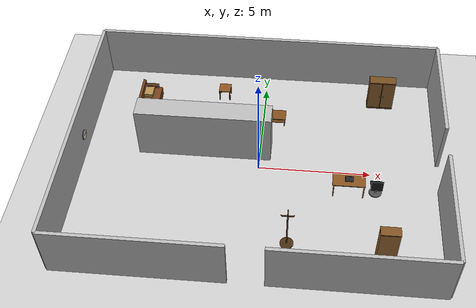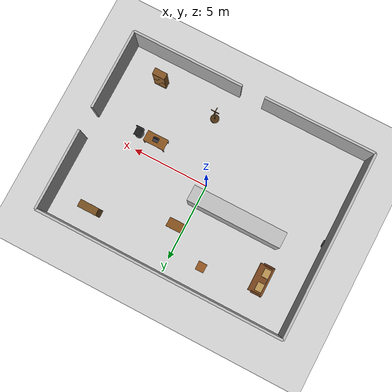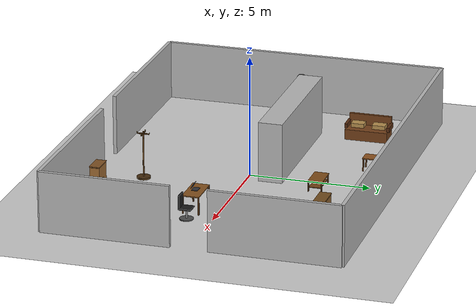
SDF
<?xml version="1.0"?>
<sdf version="1.7">
  <world name="uvc5_room">

    <!-- ========== GAZEBO ROS PLUGINS ========== -->
    <plugin name="gazebo_ros_state" filename="libgazebo_ros_state.so">
      <ros>
        <namespace>/gazebo</namespace>
      </ros>
      <update_rate>10.0</update_rate>
    </plugin>

    <!-- ========== LIGHTING ========== -->
    <light name="sun" type="directional">
      <cast_shadows>0</cast_shadows>
      <pose>0 0 10 0 0 0</pose>
      <diffuse>0.6 0.6 0.6 1</diffuse>
      <specular>0.1 0.1 0.1 1</specular>
      <attenuation>
        <range>1000</range>
        <constant>0.9</constant>
        <linear>0.01</linear>
        <quadratic>0.001</quadratic>
      </attenuation>
      <direction>0 0 -1</direction>
      <spot><inner_angle>0</inner_angle><outer_angle>0</outer_angle><falloff>0</falloff></spot>
    </light>

    <!-- ========== PHYSICS ========== -->
    <gravity>0 0 -9.8</gravity>
    <magnetic_field>6e-06 2.3e-05 -4.2e-05</magnetic_field>
    <atmosphere type="adiabatic"/>
    <physics type="ode">
      <max_step_size>0.001</max_step_size>
      <real_time_factor>1</real_time_factor>
      <real_time_update_rate>1000</real_time_update_rate>
    </physics>

    <!-- ========== SCENE ========== -->
    <scene>
      <ambient>0.4 0.4 0.4 1</ambient>
      <background>0.5 0.5 0.5 1</background>
      <shadows>0</shadows>
    </scene>

    <audio><device>default</device></audio>
    <wind/>
    <spherical_coordinates>
      <surface_model>EARTH_WGS84</surface_model>
      <latitude_deg>0</latitude_deg>
      <longitude_deg>0</longitude_deg>
      <elevation>0</elevation>
      <heading_deg>0</heading_deg>
    </spherical_coordinates>

    <!-- ========== GROUND PLANE ========== -->
    <model name="ground_plane">
      <static>1</static>
      <link name="link">
        <collision name="collision">
          <geometry><plane><normal>0 0 1</normal><size>100 100</size></plane></geometry>
          <surface>
            <friction><ode><mu>100</mu><mu2>50</mu2></ode><torsional><ode/></torsional></friction>
            <contact><ode/></contact>
            <bounce/>
          </surface>
          <max_contacts>10</max_contacts>
        </collision>
        <visual name="visual">
          <cast_shadows>0</cast_shadows>
          <geometry><plane><normal>0 0 1</normal><size>100 100</size></plane></geometry>
          <material><script><uri>file://media/materials/scripts/gazebo.material</uri><n>Gazebo/Grey</n></script></material>
        </visual>
        <self_collide>0</self_collide><enable_wind>0</enable_wind><kinematic>0</kinematic>
      </link>
    </model>

    <!-- ========== ROOM WALLS ========== -->
    <!-- Room: 16m wide (x: -8 to 8), 12m deep (y: -6 to 6), height 2.5m -->
    <!-- Entry: south-center (x: -0.75 to 0.75), y: -6                    -->
    <!-- Exit:  east wall opening at y: -0.75 to 0.75                      -->
    <model name="uvc5_room_walls">
      <static>1</static>
      <pose>0 0 0 0 0 0</pose>

      <!-- South wall left: x -8 to -0.75 => length 7.25, center x=-4.375 -->
      <link name="Wall_south_left">
        <collision name="col"><geometry><box><size>7.25 0.15 2.5</size></box></geometry><pose>0 0 1.25 0 0 0</pose><max_contacts>10</max_contacts><surface><contact><ode/></contact><bounce/><friction><torsional><ode/></torsional><ode/></friction></surface></collision>
        <visual name="vis"><pose>0 0 1.25 0 0 0</pose><geometry><box><size>7.25 0.15 2.5</size></box></geometry><material><script><uri>file://media/materials/scripts/gazebo.material</uri><n>Gazebo/Grey</n></script></material></visual>
        <pose>-4.375 -6.0 0 0 0 0</pose>
        <self_collide>0</self_collide><enable_wind>0</enable_wind><kinematic>0</kinematic>
      </link>

      <!-- South wall right: x 0.75 to 8 => length 7.25, center x=4.375 -->
      <link name="Wall_south_right">
        <collision name="col"><geometry><box><size>7.25 0.15 2.5</size></box></geometry><pose>0 0 1.25 0 0 0</pose><max_contacts>10</max_contacts><surface><contact><ode/></contact><bounce/><friction><torsional><ode/></torsional><ode/></friction></surface></collision>
        <visual name="vis"><pose>0 0 1.25 0 0 0</pose><geometry><box><size>7.25 0.15 2.5</size></box></geometry><material><script><uri>file://media/materials/scripts/gazebo.material</uri><n>Gazebo/Grey</n></script></material></visual>
        <pose>4.375 -6.0 0 0 0 0</pose>
        <self_collide>0</self_collide><enable_wind>0</enable_wind><kinematic>0</kinematic>
      </link>

      <!-- North wall: full 16m -->
      <link name="Wall_north">
        <collision name="col"><geometry><box><size>16.0 0.15 2.5</size></box></geometry><pose>0 0 1.25 0 0 0</pose><max_contacts>10</max_contacts><surface><contact><ode/></contact><bounce/><friction><torsional><ode/></torsional><ode/></friction></surface></collision>
        <visual name="vis"><pose>0 0 1.25 0 0 0</pose><geometry><box><size>16.0 0.15 2.5</size></box></geometry><material><script><uri>file://media/materials/scripts/gazebo.material</uri><n>Gazebo/Grey</n></script></material></visual>
        <pose>0 6.0 0 0 0 0</pose>
        <self_collide>0</self_collide><enable_wind>0</enable_wind><kinematic>0</kinematic>
      </link>

      <!-- West wall: full 12m -->
      <link name="Wall_west">
        <collision name="col"><geometry><box><size>0.15 12.0 2.5</size></box></geometry><pose>0 0 1.25 0 0 0</pose><max_contacts>10</max_contacts><surface><contact><ode/></contact><bounce/><friction><torsional><ode/></torsional><ode/></friction></surface></collision>
        <visual name="vis"><pose>0 0 1.25 0 0 0</pose><geometry><box><size>0.15 12.0 2.5</size></box></geometry><material><script><uri>file://media/materials/scripts/gazebo.material</uri><n>Gazebo/Grey</n></script></material></visual>
        <pose>-8.0 0 0 0 0 0</pose>
        <self_collide>0</self_collide><enable_wind>0</enable_wind><kinematic>0</kinematic>
      </link>

      <!-- East wall south segment: y -6 to -0.75 => length 5.25, center y=-3.375 -->
      <link name="Wall_east_south">
        <collision name="col"><geometry><box><size>0.15 5.25 2.5</size></box></geometry><pose>0 0 1.25 0 0 0</pose><max_contacts>10</max_contacts><surface><contact><ode/></contact><bounce/><friction><torsional><ode/></torsional><ode/></friction></surface></collision>
        <visual name="vis"><pose>0 0 1.25 0 0 0</pose><geometry><box><size>0.15 5.25 2.5</size></box></geometry><material><script><uri>file://media/materials/scripts/gazebo.material</uri><n>Gazebo/Grey</n></script></material></visual>
        <pose>8.0 -3.375 0 0 0 0</pose>
        <self_collide>0</self_collide><enable_wind>0</enable_wind><kinematic>0</kinematic>
      </link>

      <!-- East wall north segment: y 0.75 to 6 => length 5.25, center y=3.375 -->
      <link name="Wall_east_north">
        <collision name="col"><geometry><box><size>0.15 5.25 2.5</size></box></geometry><pose>0 0 1.25 0 0 0</pose><max_contacts>10</max_contacts><surface><contact><ode/></contact><bounce/><friction><torsional><ode/></torsional><ode/></friction></surface></collision>
        <visual name="vis"><pose>0 0 1.25 0 0 0</pose><geometry><box><size>0.15 5.25 2.5</size></box></geometry><material><script><uri>file://media/materials/scripts/gazebo.material</uri><n>Gazebo/Grey</n></script></material></visual>
        <pose>8.0 3.375 0 0 0 0</pose>
        <self_collide>0</self_collide><enable_wind>0</enable_wind><kinematic>0</kinematic>
      </link>

    </model>

    <!-- ========== CORRIDOR (left-center, wall-height, dark grey) ========== -->
    <!-- center: (-2.5, 1.0), size: 6.0 x 1.0 x 2.5                         -->
    <model name="corridor">
      <static>1</static>
      <pose>-2.5 1.0 0 0 0 0</pose>
      <link name="link">
        <collision name="col"><geometry><box><size>6.0 1.0 2.5</size></box></geometry><pose>0 0 1.25 0 0 0</pose><max_contacts>10</max_contacts><surface><contact><ode/></contact><bounce/><friction><torsional><ode/></torsional><ode/></friction></surface></collision>
        <visual name="vis"><pose>0 0 1.25 0 0 0</pose><geometry><box><size>6.0 1.0 2.5</size></box></geometry><material><script><uri>file://media/materials/scripts/gazebo.material</uri><n>Gazebo/DarkGrey</n></script></material></visual>
        <self_collide>0</self_collide><enable_wind>0</enable_wind><kinematic>0</kinematic>
      </link>
    </model>

    <!-- ========== SOFA WITH CUSHIONS (top-left, x=-5.5 y=3.5, rotated 90deg left) ========== -->
    <model name="sofa">
      <static>1</static>
      <pose>-5.5 3.5 0 0 0 1.5708</pose>
      <link name="link">
        <!-- Seat base -->
        <visual name="seat_vis"><pose>0 0 0.22 0 0 0</pose><geometry><box><size>1.80 0.85 0.44</size></box></geometry><material><ambient>0.45 0.25 0.10 1</ambient><diffuse>0.45 0.25 0.10 1</diffuse><specular>0.08 0.05 0.02 1</specular></material></visual>
        <collision name="seat_col"><pose>0 0 0.22 0 0 0</pose><geometry><box><size>1.80 0.85 0.44</size></box></geometry><max_contacts>10</max_contacts></collision>
        <!-- Backrest -->
        <visual name="back_vis"><pose>0 0.40 0.65 0 0 0</pose><geometry><box><size>1.80 0.12 0.50</size></box></geometry><material><ambient>0.45 0.25 0.10 1</ambient><diffuse>0.45 0.25 0.10 1</diffuse><specular>0.08 0.05 0.02 1</specular></material></visual>
        <collision name="back_col"><pose>0 0.40 0.65 0 0 0</pose><geometry><box><size>1.80 0.12 0.50</size></box></geometry><max_contacts>10</max_contacts></collision>
        <!-- Left armrest -->
        <visual name="arm_l_vis"><pose>-0.90 0.10 0.52 0 0 0</pose><geometry><box><size>0.12 0.70 0.20</size></box></geometry><material><ambient>0.35 0.18 0.07 1</ambient><diffuse>0.35 0.18 0.07 1</diffuse></material></visual>
        <collision name="arm_l_col"><pose>-0.90 0.10 0.52 0 0 0</pose><geometry><box><size>0.12 0.70 0.20</size></box></geometry><max_contacts>10</max_contacts></collision>
        <!-- Right armrest -->
        <visual name="arm_r_vis"><pose>0.90 0.10 0.52 0 0 0</pose><geometry><box><size>0.12 0.70 0.20</size></box></geometry><material><ambient>0.35 0.18 0.07 1</ambient><diffuse>0.35 0.18 0.07 1</diffuse></material></visual>
        <collision name="arm_r_col"><pose>0.90 0.10 0.52 0 0 0</pose><geometry><box><size>0.12 0.70 0.20</size></box></geometry><max_contacts>10</max_contacts></collision>
        <!-- Cushion left -->
        <visual name="cush_l_vis"><pose>-0.45 0.15 0.52 0 0 0</pose><geometry><box><size>0.55 0.45 0.18</size></box></geometry><material><ambient>0.70 0.55 0.30 1</ambient><diffuse>0.70 0.55 0.30 1</diffuse><specular>0.05 0.04 0.02 1</specular></material></visual>
        <collision name="cush_l_col"><pose>-0.45 0.15 0.52 0 0 0</pose><geometry><box><size>0.55 0.45 0.18</size></box></geometry><max_contacts>10</max_contacts></collision>
        <!-- Cushion right -->
        <visual name="cush_r_vis"><pose>0.45 0.15 0.52 0 0 0</pose><geometry><box><size>0.55 0.45 0.18</size></box></geometry><material><ambient>0.70 0.55 0.30 1</ambient><diffuse>0.70 0.55 0.30 1</diffuse><specular>0.05 0.04 0.02 1</specular></material></visual>
        <collision name="cush_r_col"><pose>0.45 0.15 0.52 0 0 0</pose><geometry><box><size>0.55 0.45 0.18</size></box></geometry><max_contacts>10</max_contacts></collision>
        <!-- Sofa feet -->
        <visual name="foot1_vis"><pose>-0.82 -0.38 0.05 0 0 0</pose><geometry><box><size>0.08 0.08 0.10</size></box></geometry><material><ambient>0.20 0.12 0.05 1</ambient><diffuse>0.20 0.12 0.05 1</diffuse></material></visual>
        <visual name="foot2_vis"><pose>0.82 -0.38 0.05 0 0 0</pose><geometry><box><size>0.08 0.08 0.10</size></box></geometry><material><ambient>0.20 0.12 0.05 1</ambient><diffuse>0.20 0.12 0.05 1</diffuse></material></visual>
        <visual name="foot3_vis"><pose>-0.82 0.38 0.05 0 0 0</pose><geometry><box><size>0.08 0.08 0.10</size></box></geometry><material><ambient>0.20 0.12 0.05 1</ambient><diffuse>0.20 0.12 0.05 1</diffuse></material></visual>
        <visual name="foot4_vis"><pose>0.82 0.38 0.05 0 0 0</pose><geometry><box><size>0.08 0.08 0.10</size></box></geometry><material><ambient>0.20 0.12 0.05 1</ambient><diffuse>0.20 0.12 0.05 1</diffuse></material></visual>
        <self_collide>0</self_collide><enable_wind>0</enable_wind><kinematic>0</kinematic>
      </link>
    </model>

    <!-- ========== SIDE TABLE (top-center-left, x=-2.0 y=4.5) ========== -->
    <!-- Small square table, lower height than coffee table                -->
    <model name="side_table">
      <static>1</static>
      <pose>-2.0 4.5 0 0 0 0</pose>
      <link name="link">
        <!-- Tabletop -->
        <visual name="top_vis"><pose>0 0 0.55 0 0 0</pose><geometry><box><size>0.55 0.55 0.04</size></box></geometry><material><ambient>0.55 0.32 0.12 1</ambient><diffuse>0.55 0.32 0.12 1</diffuse><specular>0.18 0.12 0.05 1</specular></material></visual>
        <collision name="top_col"><pose>0 0 0.55 0 0 0</pose><geometry><box><size>0.55 0.55 0.04</size></box></geometry><max_contacts>10</max_contacts></collision>
        <!-- Legs -->
        <visual name="leg1_vis"><pose>-0.24 -0.24 0.275 0 0 0</pose><geometry><box><size>0.05 0.05 0.55</size></box></geometry><material><ambient>0.35 0.20 0.07 1</ambient><diffuse>0.35 0.20 0.07 1</diffuse></material></visual>
        <collision name="leg1_col"><pose>-0.24 -0.24 0.275 0 0 0</pose><geometry><box><size>0.05 0.05 0.55</size></box></geometry><max_contacts>10</max_contacts></collision>
        <visual name="leg2_vis"><pose>0.24 -0.24 0.275 0 0 0</pose><geometry><box><size>0.05 0.05 0.55</size></box></geometry><material><ambient>0.35 0.20 0.07 1</ambient><diffuse>0.35 0.20 0.07 1</diffuse></material></visual>
        <collision name="leg2_col"><pose>0.24 -0.24 0.275 0 0 0</pose><geometry><box><size>0.05 0.05 0.55</size></box></geometry><max_contacts>10</max_contacts></collision>
        <visual name="leg3_vis"><pose>-0.24 0.24 0.275 0 0 0</pose><geometry><box><size>0.05 0.05 0.55</size></box></geometry><material><ambient>0.35 0.20 0.07 1</ambient><diffuse>0.35 0.20 0.07 1</diffuse></material></visual>
        <collision name="leg3_col"><pose>-0.24 0.24 0.275 0 0 0</pose><geometry><box><size>0.05 0.05 0.55</size></box></geometry><max_contacts>10</max_contacts></collision>
        <visual name="leg4_vis"><pose>0.24 0.24 0.275 0 0 0</pose><geometry><box><size>0.05 0.05 0.55</size></box></geometry><material><ambient>0.35 0.20 0.07 1</ambient><diffuse>0.35 0.20 0.07 1</diffuse></material></visual>
        <collision name="leg4_col"><pose>0.24 0.24 0.275 0 0 0</pose><geometry><box><size>0.05 0.05 0.55</size></box></geometry><max_contacts>10</max_contacts></collision>
        <self_collide>0</self_collide><enable_wind>0</enable_wind><kinematic>0</kinematic>
      </link>
    </model>

    <!-- ========== COFFEE TABLE (center, x=0.5 y=3.0) ========== -->
    <!-- Wider and lower than side table — key semantic difference  -->
    <model name="coffee_table">
      <static>1</static>
      <pose>0.5 3.0 0 0 0 0</pose>
      <link name="link">
        <!-- Tabletop -->
        <visual name="top_vis"><pose>0 0 0.42 0 0 0</pose><geometry><box><size>1.10 0.60 0.05</size></box></geometry><material><ambient>0.50 0.30 0.10 1</ambient><diffuse>0.50 0.30 0.10 1</diffuse><specular>0.18 0.12 0.05 1</specular></material></visual>
        <collision name="top_col"><pose>0 0 0.42 0 0 0</pose><geometry><box><size>1.10 0.60 0.05</size></box></geometry><max_contacts>10</max_contacts></collision>
        <!-- Lower shelf -->
        <visual name="shelf_vis"><pose>0 0 0.18 0 0 0</pose><geometry><box><size>1.00 0.50 0.03</size></box></geometry><material><ambient>0.45 0.26 0.08 1</ambient><diffuse>0.45 0.26 0.08 1</diffuse></material></visual>
        <collision name="shelf_col"><pose>0 0 0.18 0 0 0</pose><geometry><box><size>1.00 0.50 0.03</size></box></geometry><max_contacts>10</max_contacts></collision>
        <!-- Legs -->
        <visual name="leg1_vis"><pose>-0.50 -0.27 0.21 0 0 0</pose><geometry><box><size>0.05 0.05 0.42</size></box></geometry><material><ambient>0.30 0.17 0.06 1</ambient><diffuse>0.30 0.17 0.06 1</diffuse></material></visual>
        <collision name="leg1_col"><pose>-0.50 -0.27 0.21 0 0 0</pose><geometry><box><size>0.05 0.05 0.42</size></box></geometry><max_contacts>10</max_contacts></collision>
        <visual name="leg2_vis"><pose>0.50 -0.27 0.21 0 0 0</pose><geometry><box><size>0.05 0.05 0.42</size></box></geometry><material><ambient>0.30 0.17 0.06 1</ambient><diffuse>0.30 0.17 0.06 1</diffuse></material></visual>
        <collision name="leg2_col"><pose>0.50 -0.27 0.21 0 0 0</pose><geometry><box><size>0.05 0.05 0.42</size></box></geometry><max_contacts>10</max_contacts></collision>
        <visual name="leg3_vis"><pose>-0.50 0.27 0.21 0 0 0</pose><geometry><box><size>0.05 0.05 0.42</size></box></geometry><material><ambient>0.30 0.17 0.06 1</ambient><diffuse>0.30 0.17 0.06 1</diffuse></material></visual>
        <collision name="leg3_col"><pose>-0.50 0.27 0.21 0 0 0</pose><geometry><box><size>0.05 0.05 0.42</size></box></geometry><max_contacts>10</max_contacts></collision>
        <visual name="leg4_vis"><pose>0.50 0.27 0.21 0 0 0</pose><geometry><box><size>0.05 0.05 0.42</size></box></geometry><material><ambient>0.30 0.17 0.06 1</ambient><diffuse>0.30 0.17 0.06 1</diffuse></material></visual>
        <collision name="leg4_col"><pose>0.50 0.27 0.21 0 0 0</pose><geometry><box><size>0.05 0.05 0.42</size></box></geometry><max_contacts>10</max_contacts></collision>
        <self_collide>0</self_collide><enable_wind>0</enable_wind><kinematic>0</kinematic>
      </link>
    </model>

    <!-- ========== CABINET (top-right, x=5.5 y=4.5) ========== -->
    <model name="cabinet">
      <static>1</static>
      <pose>5.5 4.5 0 0 0 0</pose>
      <link name="link">
        <!-- Main body -->
        <visual name="body_vis"><pose>0 0 0.80 0 0 0</pose><geometry><box><size>1.20 0.45 1.60</size></box></geometry><material><ambient>0.55 0.38 0.18 1</ambient><diffuse>0.55 0.38 0.18 1</diffuse><specular>0.12 0.08 0.04 1</specular></material></visual>
        <collision name="body_col"><pose>0 0 0.80 0 0 0</pose><geometry><box><size>1.20 0.45 1.60</size></box></geometry><max_contacts>10</max_contacts></collision>
        <!-- Door divider line -->
        <visual name="div_vis"><pose>0 -0.23 0.80 0 0 0</pose><geometry><box><size>0.03 0.01 1.55</size></box></geometry><material><ambient>0.35 0.22 0.08 1</ambient><diffuse>0.35 0.22 0.08 1</diffuse></material></visual>
        <!-- Door handles -->
        <visual name="handle_l_vis"><pose>-0.08 -0.24 0.80 0 0 0</pose><geometry><cylinder><radius>0.02</radius><length>0.06</length></cylinder></geometry><material><ambient>0.70 0.65 0.50 1</ambient><diffuse>0.70 0.65 0.50 1</diffuse><specular>0.40 0.38 0.28 1</specular></material></visual>
        <visual name="handle_r_vis"><pose>0.08 -0.24 0.80 0 0 0</pose><geometry><cylinder><radius>0.02</radius><length>0.06</length></cylinder></geometry><material><ambient>0.70 0.65 0.50 1</ambient><diffuse>0.70 0.65 0.50 1</diffuse><specular>0.40 0.38 0.28 1</specular></material></visual>
        <!-- Top panel -->
        <visual name="top_vis"><pose>0 0 1.62 0 0 0</pose><geometry><box><size>1.22 0.47 0.05</size></box></geometry><material><ambient>0.45 0.30 0.12 1</ambient><diffuse>0.45 0.30 0.12 1</diffuse></material></visual>
        <!-- Base -->
        <visual name="base_vis"><pose>0 0 0.04 0 0 0</pose><geometry><box><size>1.22 0.47 0.08</size></box></geometry><material><ambient>0.40 0.27 0.10 1</ambient><diffuse>0.40 0.27 0.10 1</diffuse></material></visual>
        <self_collide>0</self_collide><enable_wind>0</enable_wind><kinematic>0</kinematic>
      </link>
    </model>

    <!-- ========== WALL CLOCK (on west wall face, x=-7.70 y=0.0, z=1.5) ========== -->
    <model name="wall_clock">
      <static>1</static>
      <pose>-7.70 0.0 1.5 0 0 0</pose>
      <link name="link">
        <!-- Clock face (cylinder oriented to face east, visible on wall) -->
        <visual name="face_vis"><pose>0 0 0 0 1.5708 0</pose><geometry><cylinder><radius>0.22</radius><length>0.05</length></cylinder></geometry><material><ambient>0.92 0.90 0.82 1</ambient><diffuse>0.92 0.90 0.82 1</diffuse><specular>0.15 0.15 0.12 1</specular></material></visual>
        <collision name="face_col"><pose>0 0 0 0 1.5708 0</pose><geometry><cylinder><radius>0.22</radius><length>0.05</length></cylinder></geometry><max_contacts>10</max_contacts></collision>
        <!-- Clock rim -->
        <visual name="rim_vis"><pose>0 0 0 0 1.5708 0</pose><geometry><cylinder><radius>0.23</radius><length>0.04</length></cylinder></geometry><material><ambient>0.20 0.20 0.20 1</ambient><diffuse>0.20 0.20 0.20 1</diffuse></material></visual>
        <!-- Hour hand -->
        <visual name="hour_vis"><pose>0.03 0.06 0 0 0 0</pose><geometry><box><size>0.01 0.12 0.02</size></box></geometry><material><ambient>0.10 0.10 0.10 1</ambient><diffuse>0.10 0.10 0.10 1</diffuse></material></visual>
        <!-- Minute hand -->
        <visual name="min_vis"><pose>0.03 0.09 0 0 0 0</pose><geometry><box><size>0.01 0.18 0.01</size></box></geometry><material><ambient>0.10 0.10 0.10 1</ambient><diffuse>0.10 0.10 0.10 1</diffuse></material></visual>
        <!-- Center pin -->
        <visual name="pin_vis"><pose>0.03 0 0 0 0 0</pose><geometry><cylinder><radius>0.015</radius><length>0.015</length></cylinder></geometry><material><ambient>0.60 0.10 0.10 1</ambient><diffuse>0.60 0.10 0.10 1</diffuse></material></visual>
        <self_collide>0</self_collide><enable_wind>0</enable_wind><kinematic>0</kinematic>
      </link>
    </model>

    <!-- ========== LAPTOP ON DESK (center-right, x=4.0 y=-1.0) ========== -->
    <model name="laptop_desk">
      <static>1</static>
      <pose>4.0 -1.0 0 0 0 0</pose>
      <link name="link">
        <!-- Desk top -->
        <visual name="top_vis"><pose>0 0 0.75 0 0 0</pose><geometry><box><size>1.40 0.70 0.04</size></box></geometry><material><ambient>0.52 0.32 0.12 1</ambient><diffuse>0.52 0.32 0.12 1</diffuse><specular>0.15 0.10 0.05 1</specular></material></visual>
        <collision name="top_col"><pose>0 0 0.75 0 0 0</pose><geometry><box><size>1.40 0.70 0.04</size></box></geometry><max_contacts>10</max_contacts></collision>
        <!-- Desk legs -->
        <visual name="leg1_vis"><pose>-0.65 -0.32 0.375 0 0 0</pose><geometry><box><size>0.05 0.05 0.75</size></box></geometry><material><ambient>0.32 0.18 0.06 1</ambient><diffuse>0.32 0.18 0.06 1</diffuse></material></visual>
        <collision name="leg1_col"><pose>-0.65 -0.32 0.375 0 0 0</pose><geometry><box><size>0.05 0.05 0.75</size></box></geometry><max_contacts>10</max_contacts></collision>
        <visual name="leg2_vis"><pose>0.65 -0.32 0.375 0 0 0</pose><geometry><box><size>0.05 0.05 0.75</size></box></geometry><material><ambient>0.32 0.18 0.06 1</ambient><diffuse>0.32 0.18 0.06 1</diffuse></material></visual>
        <collision name="leg2_col"><pose>0.65 -0.32 0.375 0 0 0</pose><geometry><box><size>0.05 0.05 0.75</size></box></geometry><max_contacts>10</max_contacts></collision>
        <visual name="leg3_vis"><pose>-0.65 0.32 0.375 0 0 0</pose><geometry><box><size>0.05 0.05 0.75</size></box></geometry><material><ambient>0.32 0.18 0.06 1</ambient><diffuse>0.32 0.18 0.06 1</diffuse></material></visual>
        <collision name="leg3_col"><pose>-0.65 0.32 0.375 0 0 0</pose><geometry><box><size>0.05 0.05 0.75</size></box></geometry><max_contacts>10</max_contacts></collision>
        <visual name="leg4_vis"><pose>0.65 0.32 0.375 0 0 0</pose><geometry><box><size>0.05 0.05 0.75</size></box></geometry><material><ambient>0.32 0.18 0.06 1</ambient><diffuse>0.32 0.18 0.06 1</diffuse></material></visual>
        <collision name="leg4_col"><pose>0.65 0.32 0.375 0 0 0</pose><geometry><box><size>0.05 0.05 0.75</size></box></geometry><max_contacts>10</max_contacts></collision>
        <!-- Laptop base (closed, on desk) -->
        <visual name="laptop_base_vis"><pose>0 0 0.81 0 0 0</pose><geometry><box><size>0.36 0.25 0.02</size></box></geometry><material><ambient>0.20 0.20 0.22 1</ambient><diffuse>0.20 0.20 0.22 1</diffuse><specular>0.35 0.35 0.38 1</specular></material></visual>
        <collision name="laptop_base_col"><pose>0 0 0.81 0 0 0</pose><geometry><box><size>0.36 0.25 0.02</size></box></geometry><max_contacts>10</max_contacts></collision>
        <!-- Laptop screen (open, angled back) -->
        <visual name="laptop_screen_vis"><pose>0 -0.10 0.97 -0.52 0 0</pose><geometry><box><size>0.34 0.02 0.22</size></box></geometry><material><ambient>0.18 0.18 0.20 1</ambient><diffuse>0.18 0.18 0.20 1</diffuse><specular>0.35 0.35 0.38 1</specular></material></visual>
        <collision name="laptop_screen_col"><pose>0 -0.10 0.97 -0.52 0 0</pose><geometry><box><size>0.34 0.02 0.22</size></box></geometry><max_contacts>10</max_contacts></collision>
        <!-- Laptop display (glowing) -->
        <visual name="laptop_display_vis"><pose>0 -0.09 0.97 -0.52 0 0</pose><geometry><box><size>0.30 0.01 0.18</size></box></geometry><material><ambient>0.30 0.45 0.70 1</ambient><diffuse>0.30 0.45 0.70 1</diffuse></material></visual>
        <self_collide>0</self_collide><enable_wind>0</enable_wind><kinematic>0</kinematic>
      </link>
    </model>

    <!-- ========== CHAIR (beside desk, x=5.2 y=-1.0) ========== -->
    <model name="desk_chair">
      <static>1</static>
      <pose>5.2 -1.0 0 0 0 3.14159</pose>
      <link name="link">
        <!-- Seat -->
        <visual name="seat_vis"><pose>0 0 0.48 0 0 0</pose><geometry><box><size>0.50 0.50 0.06</size></box></geometry><material><ambient>0.10 0.10 0.10 1</ambient><diffuse>0.10 0.10 0.10 1</diffuse></material></visual>
        <collision name="seat_col"><pose>0 0 0.48 0 0 0</pose><geometry><box><size>0.50 0.50 0.06</size></box></geometry><max_contacts>10</max_contacts></collision>
        <!-- Backrest -->
        <visual name="back_vis"><pose>0 0.24 0.76 0 0 0</pose><geometry><box><size>0.50 0.06 0.55</size></box></geometry><material><ambient>0.10 0.10 0.10 1</ambient><diffuse>0.10 0.10 0.10 1</diffuse></material></visual>
        <collision name="back_col"><pose>0 0.24 0.76 0 0 0</pose><geometry><box><size>0.50 0.06 0.55</size></box></geometry><max_contacts>10</max_contacts></collision>
        <!-- Gas lift -->
        <visual name="lift_vis"><pose>0 0 0.24 0 0 0</pose><geometry><cylinder><radius>0.04</radius><length>0.48</length></cylinder></geometry><material><ambient>0.50 0.50 0.50 1</ambient><diffuse>0.50 0.50 0.50 1</diffuse></material></visual>
        <collision name="lift_col"><pose>0 0 0.24 0 0 0</pose><geometry><cylinder><radius>0.04</radius><length>0.48</length></cylinder></geometry><max_contacts>10</max_contacts></collision>
        <!-- Wheel base -->
        <visual name="base_vis"><pose>0 0 0.04 0 0 0</pose><geometry><cylinder><radius>0.28</radius><length>0.04</length></cylinder></geometry><material><ambient>0.30 0.30 0.30 1</ambient><diffuse>0.30 0.30 0.30 1</diffuse></material></visual>
        <collision name="base_col"><pose>0 0 0.04 0 0 0</pose><geometry><cylinder><radius>0.28</radius><length>0.04</length></cylinder></geometry><max_contacts>10</max_contacts></collision>
        <self_collide>0</self_collide><enable_wind>0</enable_wind><kinematic>0</kinematic>
      </link>
    </model>

    <!-- ========== COAT RACK (bottom-center, x=1.5 y=-4.0) ========== -->
    <model name="coat_rack">
      <static>1</static>
      <pose>1.5 -4.0 0 0 0 0</pose>
      <link name="link">
        <!-- Central pole -->
        <visual name="pole_vis"><pose>0 0 1.0 0 0 0</pose><geometry><cylinder><radius>0.03</radius><length>2.0</length></cylinder></geometry><material><ambient>0.35 0.22 0.08 1</ambient><diffuse>0.35 0.22 0.08 1</diffuse><specular>0.10 0.07 0.03 1</specular></material></visual>
        <collision name="pole_col"><pose>0 0 1.0 0 0 0</pose><geometry><cylinder><radius>0.03</radius><length>2.0</length></cylinder></geometry><max_contacts>10</max_contacts></collision>
        <!-- Top cross arm 1 -->
        <visual name="arm1_vis"><pose>0 0 1.90 0 0 0</pose><geometry><box><size>0.50 0.04 0.04</size></box></geometry><material><ambient>0.35 0.22 0.08 1</ambient><diffuse>0.35 0.22 0.08 1</diffuse></material></visual>
        <collision name="arm1_col"><pose>0 0 1.90 0 0 0</pose><geometry><box><size>0.50 0.04 0.04</size></box></geometry><max_contacts>10</max_contacts></collision>
        <!-- Top cross arm 2 (perpendicular) -->
        <visual name="arm2_vis"><pose>0 0 1.90 0 0 1.5708</pose><geometry><box><size>0.50 0.04 0.04</size></box></geometry><material><ambient>0.35 0.22 0.08 1</ambient><diffuse>0.35 0.22 0.08 1</diffuse></material></visual>
        <collision name="arm2_col"><pose>0 0 1.90 0 0 1.5708</pose><geometry><box><size>0.50 0.04 0.04</size></box></geometry><max_contacts>10</max_contacts></collision>
        <!-- Hooks (4 small pegs at arm ends) -->
        <visual name="hook1_vis"><pose>0.26 0 1.94 0 0 0</pose><geometry><cylinder><radius>0.015</radius><length>0.06</length></cylinder></geometry><material><ambient>0.55 0.45 0.20 1</ambient><diffuse>0.55 0.45 0.20 1</diffuse></material></visual>
        <visual name="hook2_vis"><pose>-0.26 0 1.94 0 0 0</pose><geometry><cylinder><radius>0.015</radius><length>0.06</length></cylinder></geometry><material><ambient>0.55 0.45 0.20 1</ambient><diffuse>0.55 0.45 0.20 1</diffuse></material></visual>
        <visual name="hook3_vis"><pose>0 0.26 1.94 0 0 0</pose><geometry><cylinder><radius>0.015</radius><length>0.06</length></cylinder></geometry><material><ambient>0.55 0.45 0.20 1</ambient><diffuse>0.55 0.45 0.20 1</diffuse></material></visual>
        <visual name="hook4_vis"><pose>0 -0.26 1.94 0 0 0</pose><geometry><cylinder><radius>0.015</radius><length>0.06</length></cylinder></geometry><material><ambient>0.55 0.45 0.20 1</ambient><diffuse>0.55 0.45 0.20 1</diffuse></material></visual>
        <!-- Base disc -->
        <visual name="base_vis"><pose>0 0 0.04 0 0 0</pose><geometry><cylinder><radius>0.28</radius><length>0.08</length></cylinder></geometry><material><ambient>0.28 0.18 0.06 1</ambient><diffuse>0.28 0.18 0.06 1</diffuse></material></visual>
        <collision name="base_col"><pose>0 0 0.04 0 0 0</pose><geometry><cylinder><radius>0.28</radius><length>0.08</length></cylinder></geometry><max_contacts>10</max_contacts></collision>
        <self_collide>0</self_collide><enable_wind>0</enable_wind><kinematic>0</kinematic>
      </link>
    </model>

    <!-- ========== CUPBOARD (bottom-right, x=5.5 y=-4.5, rotated 180deg) ========== -->
    <!-- Taller and narrower than cabinet — distinct proportions     -->
    <model name="cupboard">
      <static>1</static>
      <pose>5.5 -4.5 0 0 0 3.14159</pose>
      <link name="link">
        <!-- Main body -->
        <visual name="body_vis"><pose>0 0 1.0 0 0 0</pose><geometry><box><size>0.80 0.40 2.00</size></box></geometry><material><ambient>0.62 0.42 0.20 1</ambient><diffuse>0.62 0.42 0.20 1</diffuse><specular>0.12 0.08 0.04 1</specular></material></visual>
        <collision name="body_col"><pose>0 0 1.0 0 0 0</pose><geometry><box><size>0.80 0.40 2.00</size></box></geometry><max_contacts>10</max_contacts></collision>
        <!-- Horizontal shelf divider (middle) -->
        <visual name="shelf_vis"><pose>0 -0.20 1.0 0 0 0</pose><geometry><box><size>0.78 0.01 0.03</size></box></geometry><material><ambient>0.45 0.28 0.10 1</ambient><diffuse>0.45 0.28 0.10 1</diffuse></material></visual>
        <!-- Upper door handle -->
        <visual name="handle_up_vis"><pose>0 -0.21 1.45 0 0 0</pose><geometry><box><size>0.06 0.02 0.12</size></box></geometry><material><ambient>0.75 0.68 0.45 1</ambient><diffuse>0.75 0.68 0.45 1</diffuse><specular>0.45 0.40 0.25 1</specular></material></visual>
        <!-- Lower door handle -->
        <visual name="handle_lo_vis"><pose>0 -0.21 0.55 0 0 0</pose><geometry><box><size>0.06 0.02 0.12</size></box></geometry><material><ambient>0.75 0.68 0.45 1</ambient><diffuse>0.75 0.68 0.45 1</diffuse><specular>0.45 0.40 0.25 1</specular></material></visual>
        <!-- Top panel -->
        <visual name="top_vis"><pose>0 0 2.03 0 0 0</pose><geometry><box><size>0.82 0.42 0.04</size></box></geometry><material><ambient>0.50 0.32 0.14 1</ambient><diffuse>0.50 0.32 0.14 1</diffuse></material></visual>
        <!-- Base -->
        <visual name="base_vis"><pose>0 0 0.04 0 0 0</pose><geometry><box><size>0.82 0.42 0.08</size></box></geometry><material><ambient>0.45 0.28 0.12 1</ambient><diffuse>0.45 0.28 0.12 1</diffuse></material></visual>
        <self_collide>0</self_collide><enable_wind>0</enable_wind><kinematic>0</kinematic>
      </link>
    </model>

    <!-- ========== GUI CAMERA ========== -->
    <gui fullscreen="0">
      <camera name="user_camera">
        <pose>0 -18 20 0 0.785 1.5708</pose>
        <view_controller>orbit</view_controller>
        <projection_type>perspective</projection_type>
      </camera>
    </gui>

  </world>
</sdf>
